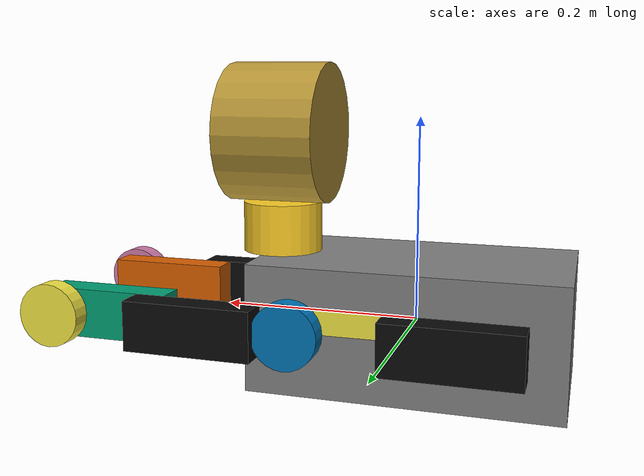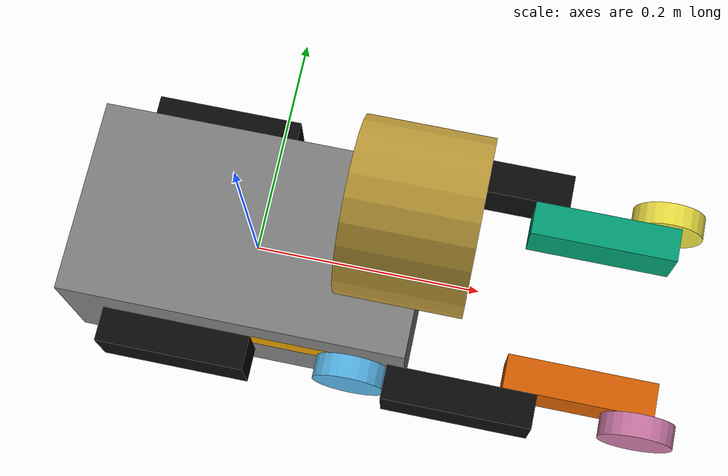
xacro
<?xml version="1.0"?>
<robot name="fiar_bot" xmlns:xacro="http://www.ros.org/wiki/xacro">

    <!-- ========= Xacro Import =========-->
    <xacro:include filename="$(find fiar_pkg)/urdf/frontLeg.urdf.xacro" />
    <xacro:include filename="materials.urdf.xacro"/>

    <!-- === base_link ===-->
    <link name="body">
        <visual>
            <geometry>
                <box size="0.30 0.17 0.125"/>
            </geometry>
            <material name="CasterGrey"/>
        </visual>
        <collision>
            <geometry>
                <box size="0.30 0.17 0.125"/>
            </geometry>
        </collision>
        <inertial>
            <mass value="0.5"/>
            <inertia
                ixx="0.00014167" ixy="0.0" ixz="0.0"
                iyy="0.00074167" iyz="0.0" izz="0.00080833"/>
        </inertial>
    </link>

    <!-- ========= Xacro Include Legs=========-->
    <xacro:front_leg link1="legL1" link2="legL2" wheel="wL1" joint1="LF2" joint2="w1" />
    <xacro:front_leg link1="legR1" link2="legR2" wheel="wR1" joint1="RF2" joint2="w2"/>
    <xacro:front_leg link1="legBackR1" link2="legBackR2" wheel="wR2" joint1="RB2" joint2="w3"/>
    <xacro:front_leg link1="legBackL1" link2="legBackL2" wheel="wL2" joint1="LB2" joint2="w4"/>
    <!-- === Xacro Include Head ====-->
    <xacro:topHead head="head" neck="neck"/>

    <!-- === leg1_to_body ===-->
    <joint name="LF1" type="revolute">
        <parent link="body"/>
        <child link="legL1"/>
        <origin xyz="0.125 0.1 0" rpy="1.5707 0 0"/>
        <axis xyz="0 0 1"/>
        <limit lower="-3.1415" upper="0" effort="10" velocity="2"/>
        <dynamics damping="1" friction="1"/>
    </joint>
    <!-- === leg2_to_body ===-->
    <joint name="RF1" type="revolute">
        <parent link="body"/>
        <child link="legR1"/>
        <origin xyz="0.125 -0.1 0" rpy="-1.5707 0 0"/>
        <axis xyz="0 0 1"/>
        <limit lower="0" upper="3.1415" effort="10" velocity="2"/>
        <dynamics damping="1" friction="1"/>
    </joint>

    <!-- === leg3_to_body === -->
    <joint name="LB1" type="revolute">
        <parent link="body"/>
        <child link="legBackL1"/>
        <origin xyz="-0.125 0.1 0" rpy="1.5707 0 0"/>
        <axis xyz="0 0 1"/>
        <limit lower="-3.1415" upper="0" effort="10" velocity="2"/>
        <dynamics damping="1" friction="1"/>
    </joint>

    <!-- === leg4_to_body ===-->
    <joint name="RB1" type="revolute">
        <parent link="body"/>
        <child link="legBackR1"/>
        <origin xyz="-0.125 -0.1 0" rpy="-1.5707 0 0"/>
        <axis xyz="0 0 1"/>
        <limit lower="0" upper="3.1415" effort="10" velocity="2"/>
         <dynamics damping="1" friction="1"/>
    </joint>

    <!-- === Head to Body ===-->
    <joint name="neck_to_body" type="revolute">
        <parent link="body"/>
        <child link="neck"/>
        <origin xyz="0.14 0 0.0875"/>
        <axis xyz="0 0 1"/>
        <limit lower="-3.1415" upper="0" effort="10" velocity="2"/>
         <dynamics damping="1" friction="1"/>
    </joint>

<!-- Control interface -->
  <xacro:include filename="$(find fiar_pkg)/urdf/controls.urdf.xacro"/>
</robot>

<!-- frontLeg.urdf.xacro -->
<robot name="front_leg" xmlns:xacro="http://www.ros.org/wiki/xacro">

    <xacro:include filename="materials.urdf.xacro"/>

    <xacro:materials/>

    <!-- ============================ XACRO 1 ==============================-->
  <xacro:macro name="front_leg" params="link1 link2 wheel joint1 joint2">
     <!-- === LINK 1 ====-->
    <link name="${link1}">

        <visual>
            <geometry>
                <box size="0.13 0.05 0.03"/>
            </geometry>
            <material name="TopBlack"/>
            <origin xyz="0.075 0 0"/>
        </visual>
        <collision>
            <geometry>
                <box size="0.13 0.05 0.03"/>
            </geometry>
            <origin xyz="0.075 0 0"/>
        </collision>
        <inertial>
            <mass value="0.5"/>
            <inertia
                ixx="0.00014167" ixy="0.0" ixz="0.0"
                iyy="0.00074167" iyz="0.0" izz="0.00080833"/>
        </inertial>
    </link>

     <!-- === LINK 2 ====-->
     <link name="${link2}">
        <visual>
            <geometry>
                <box size="0.13 0.05 0.03"/>
            </geometry>
            <origin xyz="0.075 0 0"/>
        </visual>
        <collision>
            <geometry>
                <box size="0.13 0.05 0.03"/>
            </geometry>
            <origin xyz="0.075 0 0"/>
        </collision>
        <inertial>
            <mass value="0.5"/>
            <inertia
                ixx="0.00014167" ixy="0.0" ixz="0.0"
                iyy="0.00074167" iyz="0.0" izz="0.00080833"/>
        </inertial>
     </link>

     <!-- === wheel ====-->
     <link name="${wheel}">
        <visual>
            <geometry>
                <cylinder radius="0.0325" length="0.02"/>
            </geometry>
            <origin xyz="0 0 0" rpy="0 0 0"/>
        </visual>
        <collision>
            <geometry>
                <cylinder radius="0.0325" length="0.02"/>
            </geometry>
            <origin xyz="0 0 0" rpy="0 0 0"/>
        </collision>
        <inertial>
            <mass value="0.1"/>
            <inertia
                ixx="0.00002974" ixy="0.0" ixz="0.0"
                iyy="0.00002974" iyz="0.0" izz="0.00005281"/>
        </inertial>
     </link>

     <!-- === Joint leg to leg ====-->
     <joint  name="${joint1}" type="revolute">
            <parent link="${link1}"/>
            <child link="${link2}"/>
            <origin xyz="0.10 0 0.03"/>
            <axis xyz="0 0 1"/>
            <limit lower="-2" upper="2" effort="10" velocity="1"/>
            <dynamics damping="1" friction="1"/>
     </joint>

     <!-- === Joint wheel to leg ====-->
     <joint name="${joint2}" type="continuous">
        <parent link="${link2}"/>
        <child link="${wheel}"/>
        <origin xyz="0.13 0 -0.025" rpy="0 0 -1.5707"/>
        <axis xyz="0 0 1"/>
        <dynamics damping="1" friction="1"/>
     </joint>

</xacro:macro>
 <!-- ============================ XACRO 2 ==============================-->
<xacro:macro name="topHead" params="head neck">
    <link name="${neck}">
        <visual>
            <geometry>
                <cylinder radius="0.04" length="0.05"/>
            </geometry>
            <material name="HubcapYellow"/>
        </visual>
        <collision>
            <geometry>
                <cylinder radius="0.05" length="0.05"/>
            </geometry>
        </collision>
        <inertial>
            <mass value="0.1"/>
            <inertia
                ixx="0.00002974" ixy="0.0" ixz="0.0"
                iyy="0.00002974" iyz="0.0" izz="0.00005281"/>
        </inertial>
    </link>

    <!-- === head === -->
    <link name="${head}">
        <visual>
            <geometry>
                <cylinder radius="0.07" length="0.1"/>
            </geometry>
            <material name="SonarYellow"/>
        </visual>
        <collision>
            <geometry>
                <cylinder radius="0.13" length="0.1"/>
            </geometry>
        </collision>
        <inertial>
            <mass value="0.1"/>
            <inertia
                ixx="0.00002974" ixy="0.0" ixz="0.0"
                iyy="0.00002974" iyz="0.0" izz="0.00005281"/>
        </inertial>
    </link>

     <!-- === Head to neck ===-->
    <joint name="head_to_neck" type="revolute">
        <parent link="${neck}"/>
        <child link="${head}"/>
        <origin xyz="0 0 0.095" rpy="0 1.57 0"/>
        <axis xyz="0 0 1"/>
        <limit lower="-3.1415" upper="0" effort="10" velocity="0.4"/>
         <dynamics damping="1" friction="1"/>
    </joint>

</xacro:macro>

</robot>

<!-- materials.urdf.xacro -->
<robot xmlns:xacro="http://www.ros.org/wiki/xacro">

  <xacro:macro name="materials" params="">

    <material name="ChassisRed">
      <color rgba="0.851 0.000 0.000 1.0"/>
    </material>

    <material name="TopBlack">
      <color rgba="0.038 0.038 0.038 1.0"/>
    </material>

    <material name="WheelBlack">
      <color rgba="0.117 0.117 0.117 1.0"/>
    </material>

    <material name="CasterGrey">
      <color rgba="0.500 0.500 0.500 1.0"/>
    </material>

    <material name="HubcapYellow">
      <color rgba="1.000 0.811 0.151 1.0"/>
    </material>

    <material name="SonarYellow">
      <color rgba="0.715 0.583 0.210 1.0"/>
    </material>

  </xacro:macro>

</robot>
